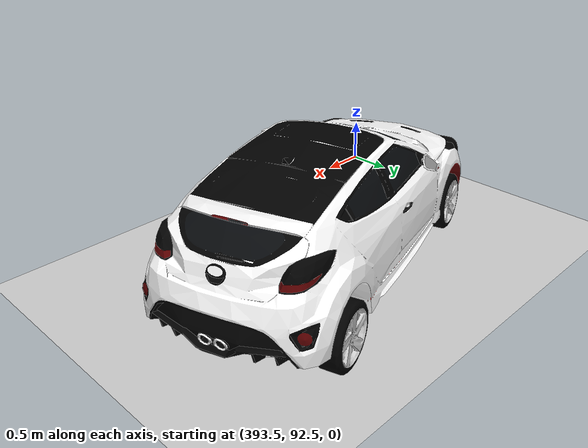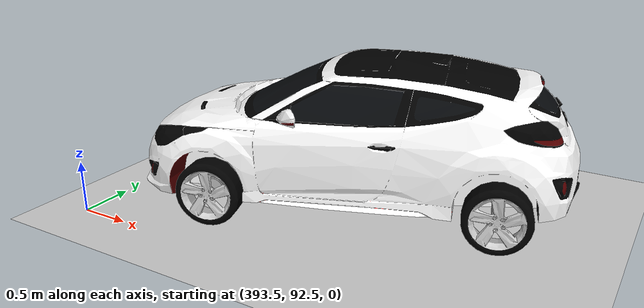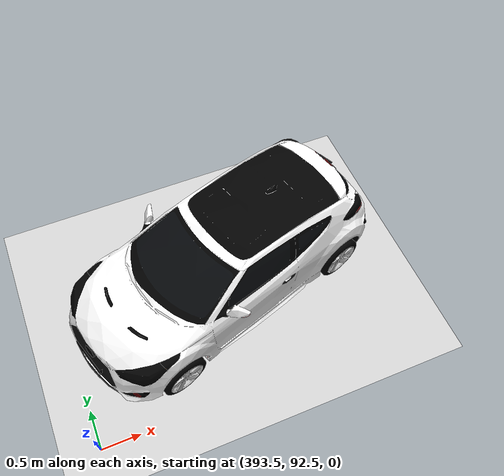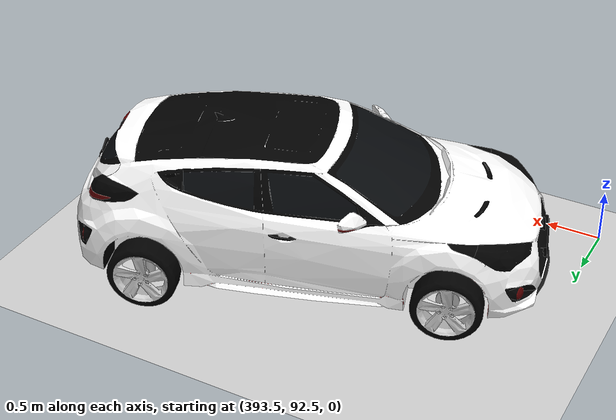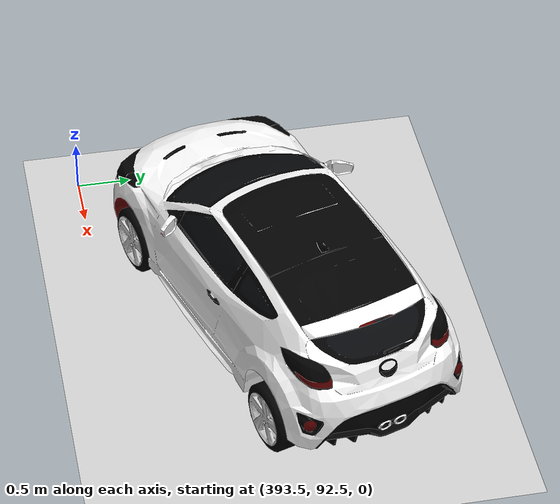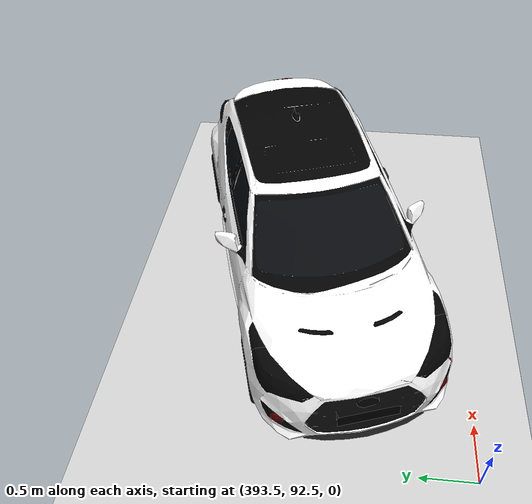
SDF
<sdf version="1.6">
 <world name="default">
  <spherical_coordinates>
   <surface_model>EARTH_WGS84</surface_model>
   <latitude_deg>60.187006</latitude_deg>
   <longitude_deg>24.819631</longitude_deg>
   <elevation>0.0</elevation>
   <heading_deg>0</heading_deg>
  </spherical_coordinates>
  <scene>
   <sky><time>15</time><sunrise>6</sunrise><sunset>17</sunset></sky>
   <grid>false</grid>
   <shadows>0</shadows>
  </scene>
  <include><uri>model://ground_plane</uri></include>
  <model name="car">
   <include><uri>model://car_model</uri><pose>395.667670136 94.0649461115 0 0 0 3.44941567413</pose></include>
  </model>
 </world>
</sdf>

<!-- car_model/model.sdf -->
<sdf version="1.6">
 <model name="EKF">
<include>
     <uri>model://car</uri>
     <name>hyundai</name>
     <pose>0 0 0 0 0 0</pose>
</include>

<!-- GPS-->

<include>
      <uri>model://gps</uri>
      <name>gps</name>
      <pose>0 0 1 0 0 0</pose>
</include>

<joint name="gps_joint" type="fixed">
        <parent>hyundai::base_link</parent>
        <child>gps::gps_link</child>
</joint>

<!-- IMU-->

<include>
     <uri>model://imu</uri>
     <name>imu</name>
     <pose>0 0 0.4 0 0 0</pose>
 </include>

<joint name="imu_joint" type="fixed">
        <parent>hyundai::base_link</parent>
        <child>imu::imu_link</child>
</joint>

</model>
</sdf>

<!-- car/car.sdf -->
<sdf version='1.6'>

<!-- creating car model-->
  <model name='myfirst1'>
    <pose>0 0 0 0 0 0</pose>
    <link name='base_link'>
      <pose frame=''>0 0 0 0 -0 0</pose>
      <inertial>
        <pose frame=''>0 0 0.4 0 -0 0</pose>
        <mass>1225</mass>
        <inertia>
          <ixx>523.5</ixx>
          <ixy>0</ixy>
          <ixz>0</ixz>
          <iyy>2018</iyy>
          <iyz>0</iyz>
          <izz>2141.38</izz>
        </inertia>
      </inertial>
<!-- collision model from blender -->
      <collision name='base_link_collision'>
        <pose frame=''>0 0 0.6 0 -0 0</pose>
	 <geometry>
          <box>
            <size>4.22 1.78 1</size>
          </box>
        </geometry>
      </collision>
<!--visual model from blender -->
      <visual name='base_link_visual'>
        <pose frame=''>0 0 0.1 0 -0 1.5707</pose>
        <geometry>
          <mesh>
            <scale>1 1 1</scale>
            <uri>model://car/meshes/veloster_shell_optimized_0.4.dae</uri>
          </mesh>
        </geometry>
<plugin name ="libinit_visual_parameters" filename = "libinit_visual_parameters.so"/>
      </visual>
      <visual name='brake_light_visual'>
        <pose frame=''>0 0 0.1 0 -0 1.5707</pose>
        <geometry>
          <mesh>
            <scale>1 1 1</scale>
            <uri>model://car/meshes/brake_light_optimized_0.4.dae</uri>
          </mesh>
        </geometry>
<plugin name ="brakelight" filename = "libbrake_light.so"/>
      </visual>
      <visual name='right_indicator_visual'>
        <pose frame=''>0 0 0.1 0 -0 1.5707</pose>
        <geometry>
          <mesh>
            <scale>1 1 1</scale>
            <uri>model://car/meshes/indicator_right.dae</uri>
          </mesh>
        </geometry>
<plugin name ="rightindicatorchange" filename = "librightIndicator_change.so"/>
      </visual>
      <visual name='zleft_indicator_visual'>
        <pose frame=''>0 0 0.1 0 -0 1.5707</pose>
        <geometry>
          <mesh>
            <scale>1 1 1</scale>
            <uri>model://car/meshes/indicator_left.dae</uri>
          </mesh>
        </geometry>
<plugin name ="leftindicatorchange" filename = "libleftIndicator_change.so"/>
      </visual>
    </link>
    <link name='back_left_wheel_susp'>
      <pose frame=''>-1.37 0.62 0.3 0 -0 0</pose>
      <inertial>
        <pose frame=''>0 0 0 0 -0 0</pose>
        <mass>5</mass>
        <inertia>
          <ixx>0.0697</ixx>
          <ixy>0</ixy>
          <ixz>0.0697</ixz>
          <iyy>0.4</iyy>
          <iyz>0</iyz>
          <izz>0.0625</izz>
        </inertia>
      </inertial>
      <collision name='back_left_wheel_susp_collision'>
        <pose frame=''>0 0 0 0 -0 0</pose>
        <geometry>
          <cylinder>
            <length>0.2</length>
            <radius>0.05</radius>
          </cylinder>
        </geometry>
      </collision>
      <visual name='back_left_wheel_susp_visual'>
        <pose frame=''>0 0 0 0 -0 0</pose>
        <geometry>
          <cylinder>
            <length>0.2</length>
            <radius>0.05</radius>
          </cylinder>
        </geometry>
      </visual>
    </link>
    <joint name='back_left_wheel_susp_joint' type='prismatic'>
      <child>back_left_wheel_susp</child>
      <parent>base_link</parent>
      <axis>
        <xyz>0 0 -1</xyz>
        <limit>
          <lower>-0.07</lower>
          <upper>0.07</upper>
          <effort>1000</effort>
          <velocity>0.5</velocity>
        </limit>
        <dynamics>
          <damping>2</damping>
          <friction>0</friction>
          <spring_reference>0</spring_reference>
          <spring_stiffness>0</spring_stiffness>
        </dynamics>
        <use_parent_model_frame>1</use_parent_model_frame>
      </axis>
    </joint>
    <link name='back_left_wheel'>
      <pose frame=''>-1.37 0.79 0.3 0 -0 0</pose>
      <inertial>
        <pose frame=''>0 0 0 0 -0 0</pose>
        <mass>23</mass>
        <inertia>
          <ixx>0.6512</ixx>
          <ixy>0</ixy>
          <ixz>0</ixz>
          <iyy>0.6512</iyy>
          <iyz>0</iyz>
          <izz>1.1252</izz>
        </inertia>
      </inertial>
      <collision name='back_left_wheel_collision'>
        <pose frame=''>0 0 0 1.5707 -0 0</pose>
        <geometry>
          <cylinder>
            <length>0.195</length>
            <radius>0.300</radius>
          </cylinder>
        </geometry>
      </collision>
      <visual name='back_left_wheel_visual'>
        <pose frame=''>0 0 0 1.5707 -0 0</pose>
        <geometry>
          <mesh>
            <scale>0.1 0.1 0.1</scale>
            <uri>model://car/meshes/veloster_wheel_left_optimized_0.4.dae</uri>
          </mesh>
        </geometry>
      </visual>
    </link>
    <joint name='back_left_wheel_joint' type='revolute'>
	<physics>
          <provide_feedback>true</provide_feedback>
        </physics>
      <child>back_left_wheel</child>
      <parent>back_left_wheel_susp</parent>
      <axis>
        <xyz>0 1 0</xyz>
        <limit>
          <lower>-1e+16</lower>
          <upper>1e+16</upper>
        </limit>
        <dynamics>
          <damping>0.1</damping>
          <friction>20</friction>
          <spring_reference>0</spring_reference>
          <spring_stiffness>0</spring_stiffness>
        </dynamics>
        <use_parent_model_frame>1</use_parent_model_frame>
      </axis>
    </joint>

    <link name='back_right_wheel_susp'>
      <pose frame=''>-1.37 -0.62 0.3 0 -0 0</pose>
      <inertial>
        <pose frame=''>0 0 0 0 -0 0</pose>
        <mass>5</mass>
        <inertia>
          <ixx>0.0697</ixx>
          <ixy>0</ixy>
          <ixz>0.0697</ixz>
          <iyy>0.4</iyy>
          <iyz>0</iyz>
          <izz>0.0625</izz>
        </inertia>
      </inertial>
      <collision name='back_right_wheel_susp_collision'>
        <pose frame=''>0 0 0 0 -0 0</pose>
        <geometry>
          <cylinder>
            <length>0.2</length>
            <radius>0.05</radius>
          </cylinder>
        </geometry>
      </collision>
      <visual name='back_right_wheel_susp_visual'>
        <pose frame=''>0 0 0 0 -0 0</pose>
        <geometry>
          <cylinder>
            <length>0.2</length>
            <radius>0.05</radius>
          </cylinder>
        </geometry>
      </visual>
    </link>
    <joint name='back_right_wheel_susp_joint' type='prismatic'>
      <child>back_right_wheel_susp</child>
      <parent>base_link</parent>
      <axis>
        <xyz>0 0 -1</xyz>
        <limit>
          <lower>-0.07</lower>
          <upper>0.07</upper>
          <effort>1000</effort>
          <velocity>0.5</velocity>
        </limit>
        <dynamics>
          <damping>2</damping>
          <friction>0</friction>
          <spring_reference>0</spring_reference>
          <spring_stiffness>0</spring_stiffness>
        </dynamics>
        <use_parent_model_frame>1</use_parent_model_frame>
      </axis>
    </joint>
    <link name='back_right_wheel'>
      <pose frame=''>-1.37 -0.79 0.3 0 -0 0</pose>
      <inertial>
        <pose frame=''>0 0 0 0 -0 0</pose>
        <mass>23</mass>
        <inertia>
          <ixx>0.6512</ixx>
          <ixy>0</ixy>
          <ixz>0</ixz>
          <iyy>0.6512</iyy>
          <iyz>0</iyz>
          <izz>1.1252</izz>
        </inertia>
      </inertial>
      <collision name='back_right_wheel_collision'>
        <pose frame=''>0 0 0 1.5707 -0 0</pose>
        <geometry>
          <cylinder>
            <length>0.195</length>
            <radius>0.300</radius>
          </cylinder>
        </geometry>
      </collision>
      <visual name='back_right_wheel_visual'>
        <pose frame=''>0 0 0 1.5707 -0 0</pose>
        <geometry>
          <mesh>
            <scale>0.1 0.1 0.1</scale>
            <uri>model://car/meshes/veloster_wheel_right_optimized_0.4.dae</uri>
          </mesh>
        </geometry>
      </visual>
    </link>
    <joint name='back_right_wheel_joint' type='revolute'>
	<physics>
          <provide_feedback>true</provide_feedback>
    	</physics>
      <child>back_right_wheel</child>
      <parent>back_right_wheel_susp</parent>
      <axis>
        <xyz>0 1 0</xyz>
        <limit>
          <lower>-1e+16</lower>
          <upper>1e+16</upper>
        </limit>
        <dynamics>
          <damping>0.1</damping>
          <friction>20</friction>
          <spring_reference>0</spring_reference>
          <spring_stiffness>0</spring_stiffness>
        </dynamics>
        <use_parent_model_frame>1</use_parent_model_frame>
      </axis>
    </joint>

    <link name='front_left_wheel_susp'>
      <pose frame=''>1.26 0.62 0.3 0 -0 0</pose>
      <inertial>
        <pose frame=''>0 0 0 0 -0 0</pose>
        <mass>5</mass>
        <inertia>
          <ixx>0.0697</ixx>
          <ixy>0</ixy>
          <ixz>0.0697</ixz>
          <iyy>0.4</iyy>
          <iyz>0</iyz>
          <izz>0.0625</izz>
        </inertia>
      </inertial>
      <collision name='front_left_wheel_susp_collision'>
        <pose frame=''>0 0 0 0 -0 0</pose>
        <geometry>
          <cylinder>
            <length>0.2</length>
            <radius>0.05</radius>
          </cylinder>
        </geometry>
      </collision>
      <visual name='front_left_wheel_susp_visual'>
        <pose frame=''>0 0 0 0 -0 0</pose>
        <geometry>
          <cylinder>
            <length>0.2</length>
            <radius>0.05</radius>
          </cylinder>
        </geometry>
      </visual>
    </link>
    <joint name='front_left_wheel_susp_joint' type='prismatic'>
      <child>front_left_wheel_susp</child>
      <parent>base_link</parent>
      <axis>
        <xyz>0 0 -1</xyz>
        <limit>
          <lower>-0.07</lower>
          <upper>0.07</upper>
          <effort>1000</effort>
          <velocity>0.5</velocity>
        </limit>
        <dynamics>
          <damping>2</damping>
          <friction>0</friction>
          <spring_reference>0</spring_reference>
          <spring_stiffness>0</spring_stiffness>
        </dynamics>
        <use_parent_model_frame>1</use_parent_model_frame>
      </axis>
    </joint>
    <link name='front_left_steering'>
      <pose frame=''>1.26 0.7 0.3 0 -0 0</pose>
      <inertial>
        <pose frame=''>0 0 0 0 -0 0</pose>
        <mass>5</mass>
        <inertia>
          <ixx>0.0501</ixx>
          <ixy>0</ixy>
          <ixz>0</ixz>
          <iyy>0.0501</iyy>
          <iyz>0</iyz>
          <izz>0.1</izz>
        </inertia>
      </inertial>
      <collision name='front_left_steering_collision'>
        <pose frame=''>0 0 0 1.5707 -0 0</pose>
        <geometry>
          <cylinder>
            <length>0.02</length>
            <radius>0.1</radius>
          </cylinder>
        </geometry>
      </collision>
      <visual name='front_left_steering_visual'>
        <pose frame=''>0 0 0 1.5707 -0 0</pose>
        <geometry>
          <cylinder>
            <length>0.02</length>
            <radius>0.1</radius>
          </cylinder>
        </geometry>
      </visual>
    </link>
    <joint name='front_left_steering_joint' type='revolute'>
	<physics>
          <provide_feedback>true</provide_feedback>
    	</physics>
      <child>front_left_steering</child>
      <parent>front_left_wheel_susp</parent>
      <axis>
        <xyz>0 0 1</xyz>
        <limit>
          <lower>-0.6</lower>
          <upper>0.6</upper>
          <effort>1000</effort>
          <velocity>0.5</velocity>
        </limit>
        <dynamics>
          <spring_reference>0</spring_reference>
          <spring_stiffness>0</spring_stiffness>
        </dynamics>
        <use_parent_model_frame>1</use_parent_model_frame>
      </axis>
    </joint>
    <link name='front_left_wheel'>
      <pose frame=''>1.26 0.78 0.3 0 -0 0</pose>
      <inertial>
        <pose frame=''>0 0 0 0 -0 0</pose>
        <mass>23</mass>
        <inertia>
          <ixx>0.6512</ixx>
          <ixy>0</ixy>
          <ixz>0</ixz>
          <iyy>0.6512</iyy>
          <iyz>0</iyz>
          <izz>1.1252</izz>
        </inertia>
      </inertial>
      <collision name='front_left_wheel_collision'>
        <pose frame=''>0 0 0 1.5707 -0 0</pose>
        <geometry>
          <cylinder>
            <length>0.195</length>
            <radius>0.300</radius>
          </cylinder>
        </geometry>
      </collision>
      <visual name='front_left_wheel_visual'>
        <pose frame=''>0 0 0 1.5707 -0 0</pose>
        <geometry>
          <mesh>
            <scale>0.1 0.1 0.1</scale>
            <uri>model://car/meshes/veloster_wheel_left_optimized_0.4.dae</uri>
          </mesh>
        </geometry>
      </visual>
    </link>
    <joint name='front_left_wheel_joint' type='revolute'>
	<physics>
          <provide_feedback>true</provide_feedback>
    	</physics>
      <child>front_left_wheel</child>
      <parent>front_left_steering</parent>
      <axis>
        <xyz>0 1 0</xyz>
        <limit>
          <lower>-1e+16</lower>
          <upper>1e+16</upper>
        </limit>
        <dynamics>
          <damping>0.1</damping>
          <friction>20</friction>
          <spring_reference>0</spring_reference>
          <spring_stiffness>0</spring_stiffness>
        </dynamics>
        <use_parent_model_frame>1</use_parent_model_frame>
      </axis>
    </joint>

    <link name='front_right_wheel_susp'>
      <pose frame=''>1.26 -0.62 0.3 0 -0 0</pose>
      <inertial>
        <pose frame=''>0 0 0 0 -0 0</pose>
        <mass>5</mass>
        <inertia>
          <ixx>0.0697</ixx>
          <ixy>0</ixy>
          <ixz>0.0697</ixz>
          <iyy>0.4</iyy>
          <iyz>0</iyz>
          <izz>0.0625</izz>
        </inertia>
      </inertial>
      <collision name='front_right_wheel_susp_collision'>
        <pose frame=''>0 0 0 0 -0 0</pose>
        <geometry>
          <cylinder>
            <length>0.2</length>
            <radius>0.05</radius>
          </cylinder>
        </geometry>
      </collision>
      <visual name='front_right_wheel_susp_visual'>
        <pose frame=''>0 0 0 0 -0 0</pose>
        <geometry>
          <cylinder>
            <length>0.2</length>
            <radius>0.05</radius>
          </cylinder>
        </geometry>
      </visual>
    </link>
    <joint name='front_right_wheel_susp_joint' type='prismatic'>
      <child>front_right_wheel_susp</child>
      <parent>base_link</parent>
      <axis>
        <xyz>0 0 -1</xyz>
        <limit>
          <lower>-0.07</lower>
          <upper>0.07</upper>
          <effort>1000</effort>
          <velocity>0.5</velocity>
        </limit>
        <dynamics>
          <damping>2</damping>
          <friction>0</friction>
          <spring_reference>0</spring_reference>
          <spring_stiffness>0</spring_stiffness>
        </dynamics>
        <use_parent_model_frame>1</use_parent_model_frame>
      </axis>
    </joint>
    <link name='front_right_steering'>
      <pose frame=''>1.26 -0.7 0.3 0 -0 0</pose>
      <inertial>
        <pose frame=''>0 0 0 0 -0 0</pose>
        <mass>5</mass>
        <inertia>
          <ixx>0.0501</ixx>
          <ixy>0</ixy>
          <ixz>0</ixz>
          <iyy>0.0501</iyy>
          <iyz>0</iyz>
          <izz>0.1</izz>
        </inertia>
      </inertial>
      <collision name='front_right_steering_collision'>
        <pose frame=''>0 0 0 1.5707 -0 0</pose>
        <geometry>
          <cylinder>
            <length>0.02</length>
            <radius>0.1</radius>
          </cylinder>
        </geometry>
      </collision>
      <visual name='front_right_steering_visual'>
        <pose frame=''>0 0 0 1.5707 -0 0</pose>
        <geometry>
          <cylinder>
            <length>0.02</length>
            <radius>0.1</radius>
          </cylinder>
        </geometry>
      </visual>
    </link>
    <joint name='front_right_steering_joint' type='revolute'>
      <child>front_right_steering</child>
      <parent>front_right_wheel_susp</parent>
      <axis>
        <xyz>0 0 1</xyz>
        <limit>
          <lower>-0.6</lower>
          <upper>0.6</upper>
          <effort>1000</effort>
          <velocity>0.5</velocity>
        </limit>
        <dynamics>
          <spring_reference>0</spring_reference>
          <spring_stiffness>0</spring_stiffness>
        </dynamics>
        <use_parent_model_frame>1</use_parent_model_frame>
      </axis>
    </joint>
    <link name='front_right_wheel'>
      <pose frame=''>1.26 -0.78 0.3 0 -0 0</pose>
      <inertial>
        <pose frame=''>0 0 0 0 -0 0</pose>
        <mass>23</mass>
        <inertia>
          <ixx>0.6512</ixx>
          <ixy>0</ixy>
          <ixz>0</ixz>
          <iyy>0.6512</iyy>
          <iyz>0</iyz>
          <izz>1.1252</izz>
        </inertia>
      </inertial>
      <collision name='front_right_wheel_collision'>
        <pose frame=''>0 0 0 1.5707 -0 0</pose>
        <geometry>
          <cylinder>
            <length>0.195</length>
            <radius>0.300</radius>
          </cylinder>
        </geometry>
      </collision>
      <visual name='front_right_wheel_visual'>
        <pose frame=''>0 0 0 1.5707 -0 0</pose>
        <geometry>
          <mesh>
            <scale>0.1 0.1 0.1</scale>
            <uri>model://car/meshes/veloster_wheel_right_optimized_0.4.dae</uri>
          </mesh>
        </geometry>
      </visual>
    </link>
    <joint name='front_right_wheel_joint' type='revolute'>
	<physics>
          <provide_feedback>true</provide_feedback>
        </physics>
      <child>front_right_wheel</child>
      <parent>front_right_steering</parent>
      <axis>
        <xyz>0 1 0</xyz>
        <limit>
          <lower>-1e+16</lower>
          <upper>1e+16</upper>
        </limit>
        <dynamics>
          <damping>0.1</damping>
          <friction>20</friction>
          <spring_reference>0</spring_reference>
          <spring_stiffness>0</spring_stiffness>
        </dynamics>
        <use_parent_model_frame>1</use_parent_model_frame>
      </axis>
    </joint>

<plugin name = "car_controller" filename = "libcar_controller_plugin_key_input.so"/>
<plugin name = "wheel_speed" filename = "libwheel_plugin.so"/>
<!--plugin name = "car_controller" filename = "libcar_controller_plugin_dbw.so"/-->

  </model>
</sdf>

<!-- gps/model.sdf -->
<sdf version="1.6">
  <model name="gps">
    <link name="gps_link">
       <inertial>
       <mass>0.1</mass>
       <inertia>
         <ixx>0.000166666</ixx>
         <ixy>0</ixy>
         <ixz>0</ixz>
         <iyy>0.000166666</iyy>
         <iyz>0</iyz>
         <izz>0.000166666</izz>
       </inertia>
     </inertial>
      <visual name="visual">
        <geometry>
          <box>
            <size>0.1 0.1 0.1</size>
          </box>
        </geometry>
      </visual>
      <collision name="collision">
        <geometry>
          <box>
            <size>0.1 0.1 0.1</size>
          </box>
        </geometry>
      </collision>
    </link>
       <plugin name="gps" filename="libgps.so">
      <alwaysOn>true</alwaysOn>
      <bodyName>gps_link</bodyName>
      <topicName>gps_data</topicName>
      <updateRate>1.0</updateRate>
      </plugin>
  </model>
</sdf>

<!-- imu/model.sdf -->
<sdf version="1.6">
  <model name="imu">
    <link name="imu_link">
     <inertial>
       <mass>0.1</mass>
       <inertia>
         <ixx>0.000166666</ixx>
         <ixy>0</ixy>
         <ixz>0</ixz>
         <iyy>0.000166666</iyy>
         <iyz>0</iyz>
         <izz>0.000166666</izz>
       </inertia>
     </inertial>
      <visual name="visual">
        <geometry>
          <box>
            <size>0.1 0.1 0.1</size>
          </box>
        </geometry>
      </visual>
      <collision name="collision">
        <geometry>
          <box>
            <size>0.1 0.1 0.1</size>
          </box>
        </geometry>
      </collision>
    </link>
       <plugin name="imu" filename="libimu.so">
      <alwaysOn>true</alwaysOn>
      <frameName>imu_frame</frameName>
      <bodyName>imu_link</bodyName>
      <topicName>imu_data</topicName>
      <serviceName>imu_service</serviceName>
      <ditectAngleFromImu>true</ditectAngleFromImu>
      <gaussianNoise>0.0</gaussianNoise>
      <updateRate>100.0</updateRate>
      </plugin>
  </model>
</sdf>
